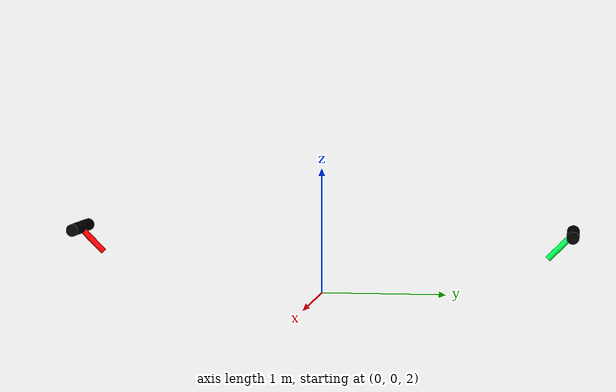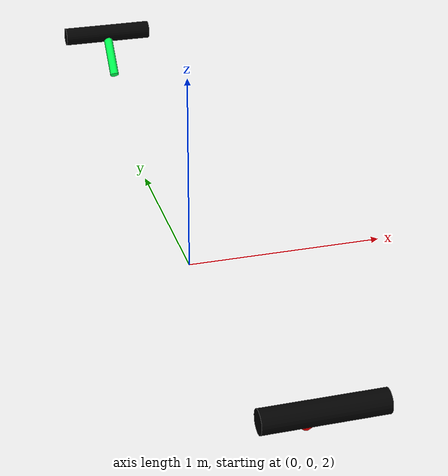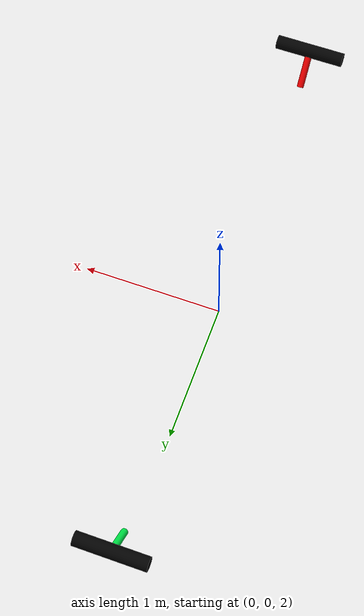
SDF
<?xml version="1.0" encoding="UTF-8"?>
<sdf version='1.11'>
  <model name='laser_bar'>
    <link name='chassis'>
      <inertial>
        <mass>0</mass>
        <inertia>
          <ixx>0</ixx>
          <ixy>0</ixy>
          <ixz>0</ixz>
          <iyy>0</iyy>
          <iyz>0</iyz>
          <izz>0</izz>
        </inertia>
      </inertial>
      <pose>0 0 3 0 0 0</pose>
    </link>

    <!-- joint_1 + bar: was two chained frames off chassis -->
    <joint name='joint_1' type='fixed'>
      <pose relative_to='chassis'>0 0 -0.5 0 0 0</pose>
      <parent>chassis</parent>
      <child>bar</child>
    </joint>
    <link name='bar'>
      <pose relative_to='joint_1'>0 0 0 0 0 0</pose>
      <inertial>
        <mass>0</mass>
        <inertia>
          <ixx>0</ixx>
          <ixy>0</ixy>
          <ixz>0</ixz>
          <iyy>0</iyy>
          <iyz>0</iyz>
          <izz>0</izz>
        </inertia>
      </inertial>
    </link>

    <!-- camera_frame + camera: was two chained frames off bar -->
    <joint name='camera_frame' type='fixed'>
      <pose relative_to='bar'>0 0 -0.050000000000000003 -3.1415926535897931 0 1.5708926535897942</pose>
      <parent>bar</parent>
      <child>camera</child>
    </joint>
    <link name='camera'>
      <pose relative_to='camera_frame'>0 0 0 0 0 0</pose>
      <inertial>
        <mass>0</mass>
        <inertia>
          <ixx>0</ixx>
          <ixy>0</ixy>
          <ixz>0</ixz>
          <iyy>0</iyy>
          <iyz>0</iyz>
          <izz>0</izz>
        </inertia>
      </inertial>
    </link>

    <!-- laser pivot 1 chain -->
    <joint name='pivot_joint1' type='fixed'>
      <pose relative_to='chassis'>0 -2 -0.5 0 1.5706999999997038 0</pose>
      <parent>chassis</parent>
      <child>laser_pivot1</child>
    </joint>
    <link name='laser_pivot1'>
      <pose relative_to='pivot_joint1'>0 0 0 0 0 0</pose>
      <visual name='laser_pivot1_visual'>
        <pose>0 0 0 0 0 0</pose>
        <geometry>
          <cylinder>
            <length>0.5</length>
            <radius>0.050000000000000003</radius>
          </cylinder>
        </geometry>
        <material>
          <diffuse>0 0 0 1</diffuse>
          <ambient>0 0 0 1</ambient>
        </material>
      </visual>
      <inertial>
        <mass>0</mass>
        <inertia>
          <ixx>0</ixx>
          <ixy>0</ixy>
          <ixz>0</ixz>
          <iyy>0</iyy>
          <iyz>0</iyz>
          <izz>0</izz>
        </inertia>
      </inertial>
    </link>
    <joint name='laser_frame1' type='fixed'>
      <pose relative_to='laser_pivot1'>0 0 0 -0.7853981633974483 1.5706999999997038 0</pose>
      <parent>laser_pivot1</parent>
      <child>laser1</child>
    </joint>
    <link name='laser1'>
      <pose relative_to='laser_frame1'>0 0 0.15 0 0 0</pose>
      <visual name='laser1_visual'>
        <pose>0 0 0 0 0 0</pose>
        <geometry>
          <cylinder>
            <length>0.25</length>
            <radius>0.025000000000000001</radius>
          </cylinder>
        </geometry>
        <material>
          <diffuse>1 0 0 1</diffuse>
          <ambient>1 0 0 1</ambient>
        </material>
      </visual>
      <inertial>
        <mass>0</mass>
        <inertia>
          <ixx>0</ixx>
          <ixy>0</ixy>
          <ixz>0</ixz>
          <iyy>0</iyy>
          <iyz>0</iyz>
          <izz>0</izz>
        </inertia>
      </inertial>
      <light name='laser1_spot' type='spot'>
        <pose>0 0 0.125 0 0 0</pose>   <!-- tip of the cylinder -->
        <direction>0 0 1</direction>    <!-- along the laser axis -->
        <diffuse>0 1 0 1</diffuse>     <!-- red to match laser1 visual -->
        <specular>0 1 0 1</specular>
        <intensity>1.0</intensity>
        <range>50</range>
        <attenuation>
          <range>50</range>
          <constant>1.0</constant>
          <linear>0.0</linear>
          <quadratic>0.0</quadratic>
        </attenuation>
        <spot>
          <inner_angle>0.01</inner_angle>
          <outer_angle>0.03</outer_angle>
          <falloff>1.0</falloff>
        </spot>
        <cast_shadows>true</cast_shadows>
      </light>
    </link>

    <!-- laser pivot 2 chain -->
    <joint name='pivot_joint2' type='fixed'>
      <pose relative_to='chassis'>0 2 -0.5 0 1.5706999999997038 0</pose>
      <parent>chassis</parent>
      <child>laser_pivot2</child>
    </joint>
    <link name='laser_pivot2'>
      <pose relative_to='pivot_joint2'>0 0 0 0 0 0</pose>
      <visual name='laser_pivot2_visual'>
        <pose>0 0 0 0 0 0</pose>
        <geometry>
          <cylinder>
            <length>0.5</length>
            <radius>0.050000000000000003</radius>
          </cylinder>
        </geometry>
        <material>
          <diffuse>0 0 0 1</diffuse>
          <ambient>0 0 0 1</ambient>
        </material>
      </visual>
      <inertial>
        <mass>0</mass>
        <inertia>
          <ixx>0</ixx>
          <ixy>0</ixy>
          <ixz>0</ixz>
          <iyy>0</iyy>
          <iyz>0</iyz>
          <izz>0</izz>
        </inertia>
      </inertial>
    </link>
    <joint name='laser_frame2' type='fixed'>
      <pose relative_to='laser_pivot2'>0 0 0 0.7853981633974483 1.5706999999997038 0</pose>
      <parent>laser_pivot2</parent>
      <child>laser2</child>
    </joint>
    <link name='laser2'>
      <pose relative_to='laser_frame2'>0 0 0.15 0 0 0</pose>
      <visual name='laser2_visual'>
        <pose>0 0 0 0 0 0</pose>
        <geometry>
          <cylinder>
            <length>0.25</length>
            <radius>0.025000000000000001</radius>
          </cylinder>
        </geometry>
        <material>
          <diffuse>0 1 0.313749969 1</diffuse>
          <ambient>0 1 0.313749969 1</ambient>
        </material>
      </visual>
      <inertial>
        <mass>0</mass>
        <inertia>
          <ixx>0</ixx>
          <ixy>0</ixy>
          <ixz>0</ixz>
          <iyy>0</iyy>
          <iyz>0</iyz>
          <izz>0</izz>
        </inertia>
      </inertial>
      <light name='laser2_spot' type='spot'>
        <pose>0 0 0.125 0 0 0</pose>   <!-- tip of the cylinder -->
        <direction>0 0 1</direction>    <!-- along the laser axis -->
        <diffuse>0 1 0 1</diffuse>     <!-- red to match laser2 visual -->
        <specular>0 1 0 1</specular>
        <intensity>1.0</intensity>
        <range>50</range>
        <attenuation>
          <range>50</range>
          <constant>1.0</constant>
          <linear>0.0</linear>
          <quadratic>0.0</quadratic>
        </attenuation>
        <spot>
          <inner_angle>0.01</inner_angle>
          <outer_angle>0.03</outer_angle>
          <falloff>1.0</falloff>
        </spot>
        <cast_shadows>true</cast_shadows>
      </light>
    </link>

  </model>
</sdf>
